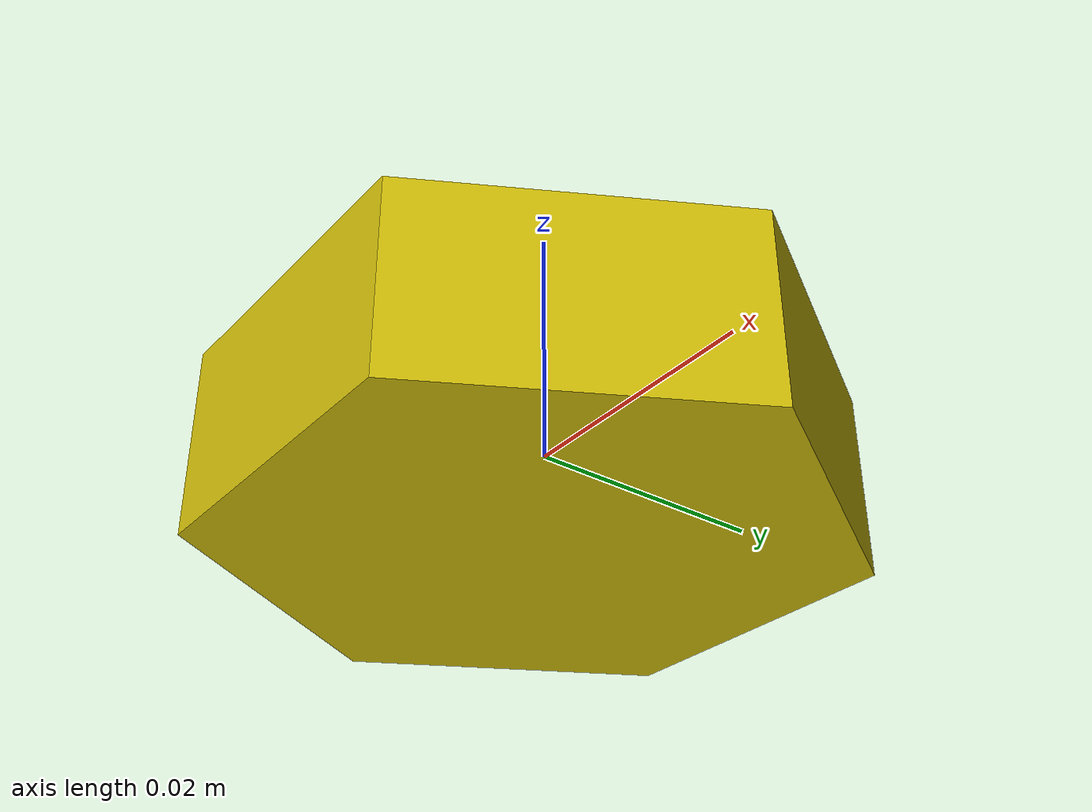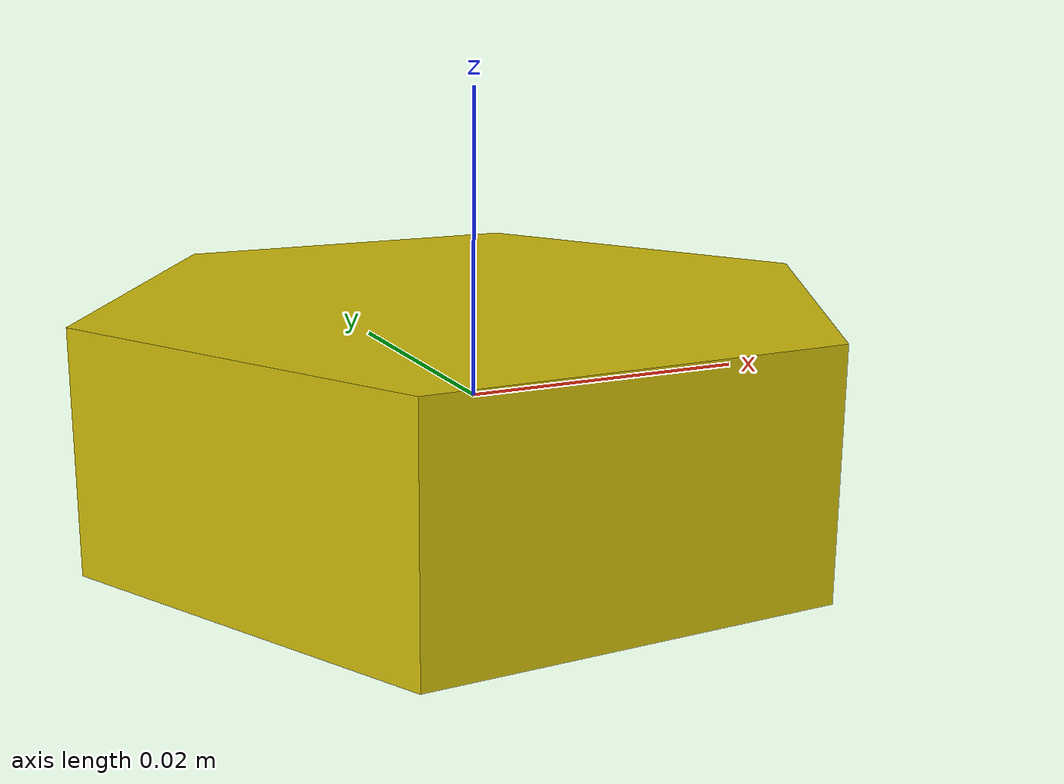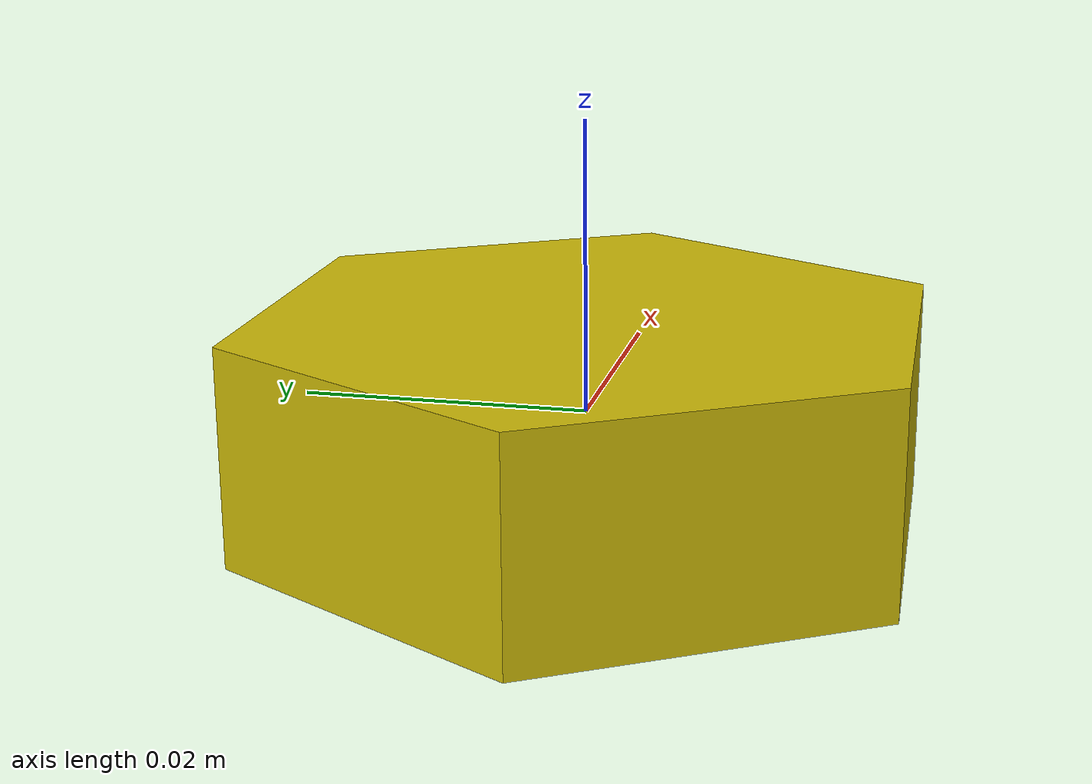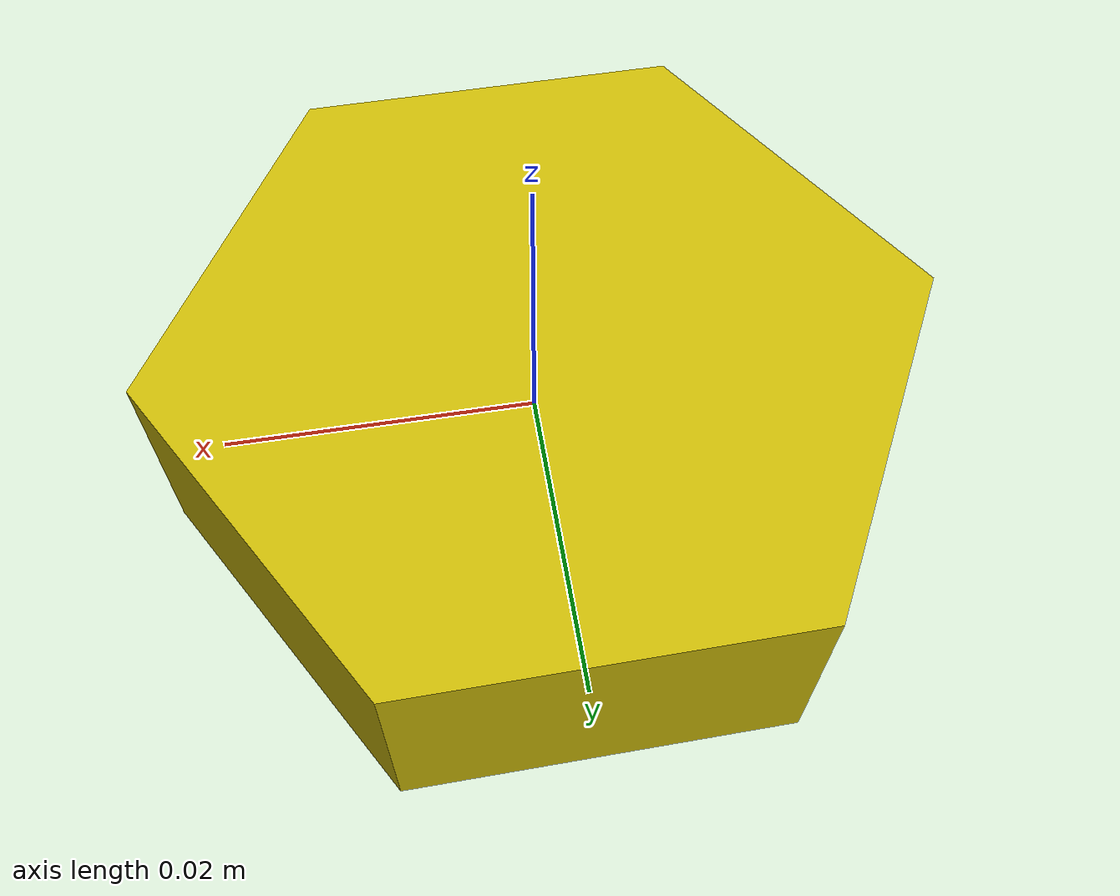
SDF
<?xml version="1.0" ?>
<sdf version="1.5">
  <model name="hexagone_jaune">
    <static>false</static>
    <link name="link">
      <pose>0 0 0 0 0 0</pose>
      <collision name="collision">
        <geometry>
          <mesh>
            <uri>model://hexagone_jaune/meshes/hexagone_jaune.dae</uri>
          </mesh>
        </geometry>
      </collision>
      <visual name="visual">
        <geometry>
          <mesh>
            <uri>model://hexagone_jaune/meshes/hexagone_jaune.dae</uri>
          </mesh>
        </geometry>
        <material>

        </material>
      </visual>
      <inertial>
        <mass>0.019</mass>
        <inertia> <!-- inertias are tricky to compute -->
          <!-- http://gazebosim.org/tutorials?tut=inertia&cat=build_robot -->
          <ixx>2.9e-6</ixx>       <!-- for a box: ixx = 0.083 * mass * (y*y + z*z) -->
          <ixy>0.0</ixy>         <!-- for a box: ixy = 0 -->
          <ixz>0.0</ixz>         <!-- for a box: ixz = 0 -->
          <iyy>2.9e-6</iyy>       <!-- for a box: iyy = 0.083 * mass * (x*x + z*z) -->
          <iyz>0.0</iyz>         <!-- for a box: iyz = 0 -->
          <izz>5.0e-6</izz>       <!-- for a box: izz = 0.083 * mass * (x*x + y*y) -->
        </inertia>
      </inertial>
    </link>
  </model>
</sdf>
